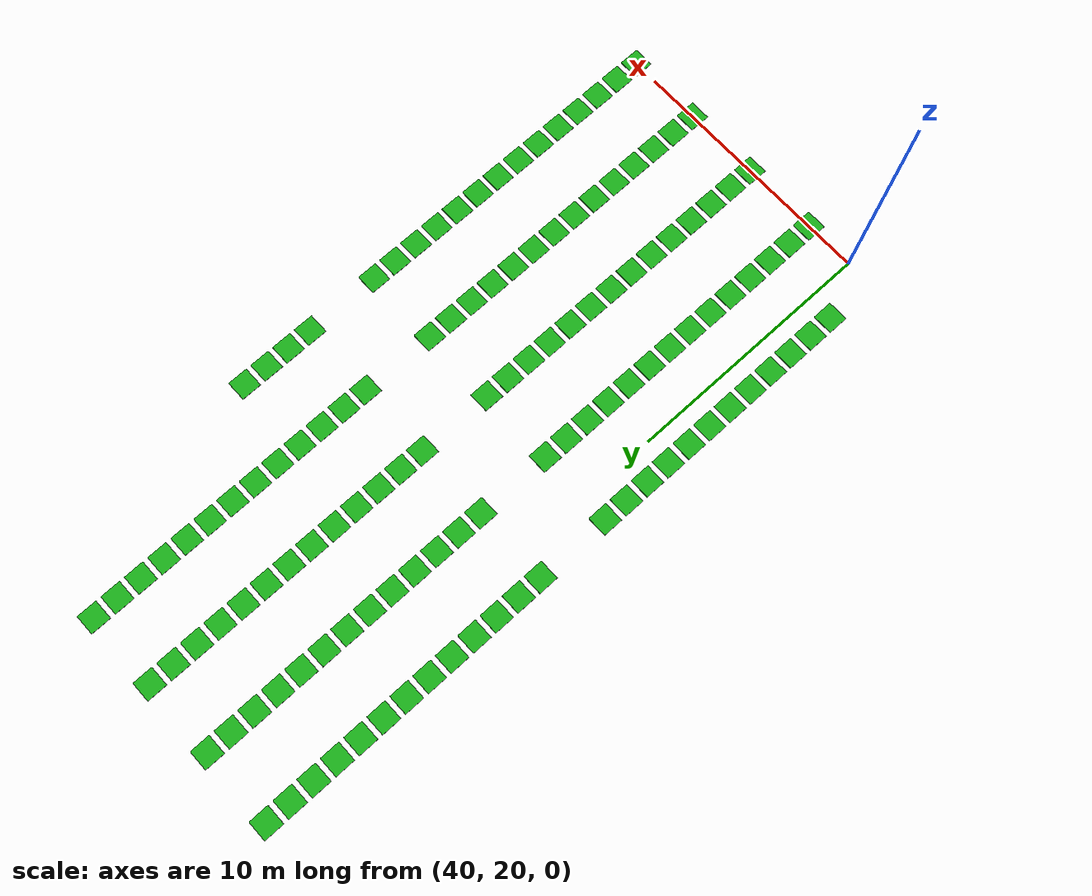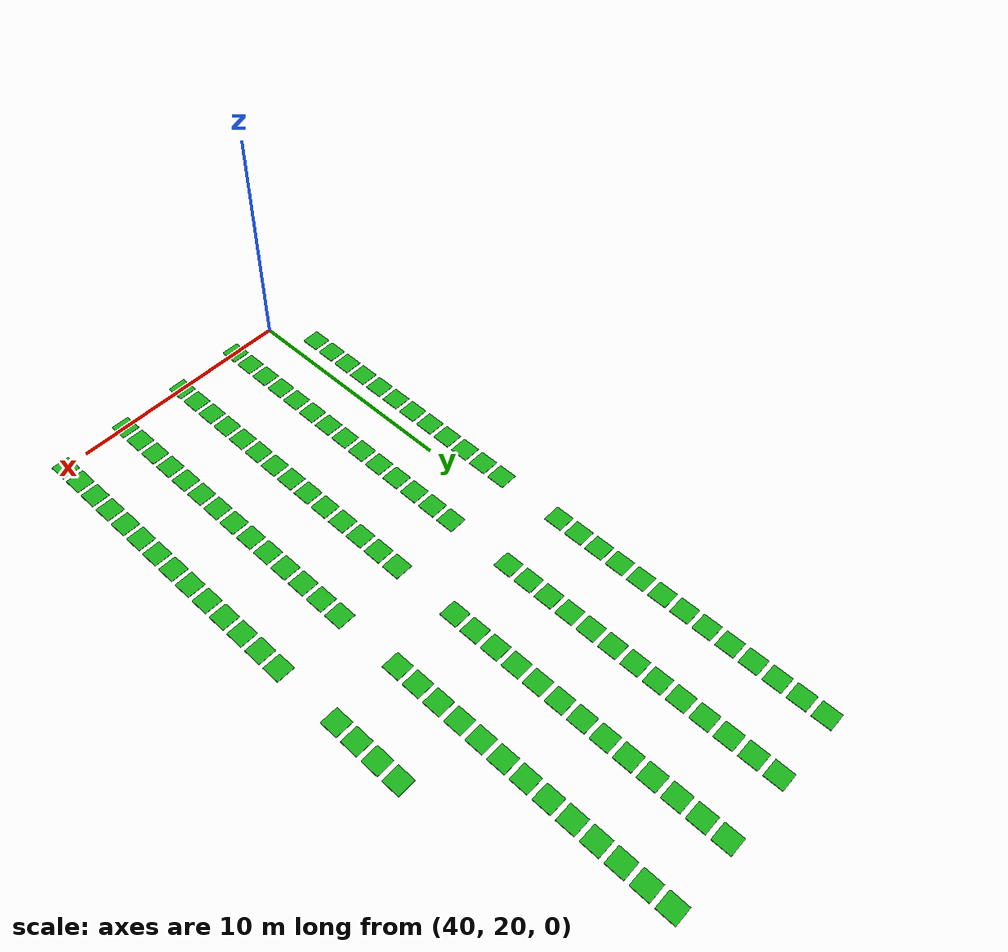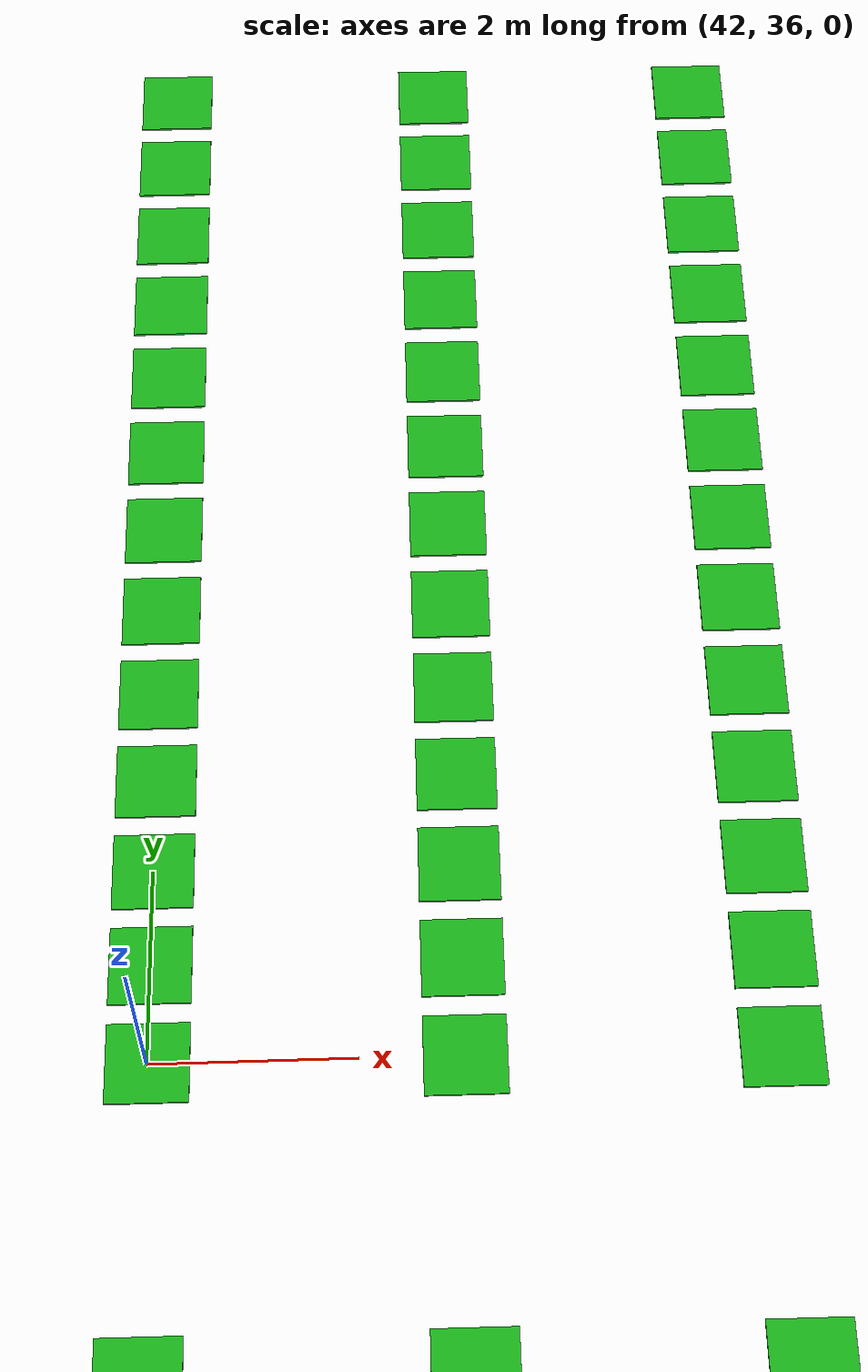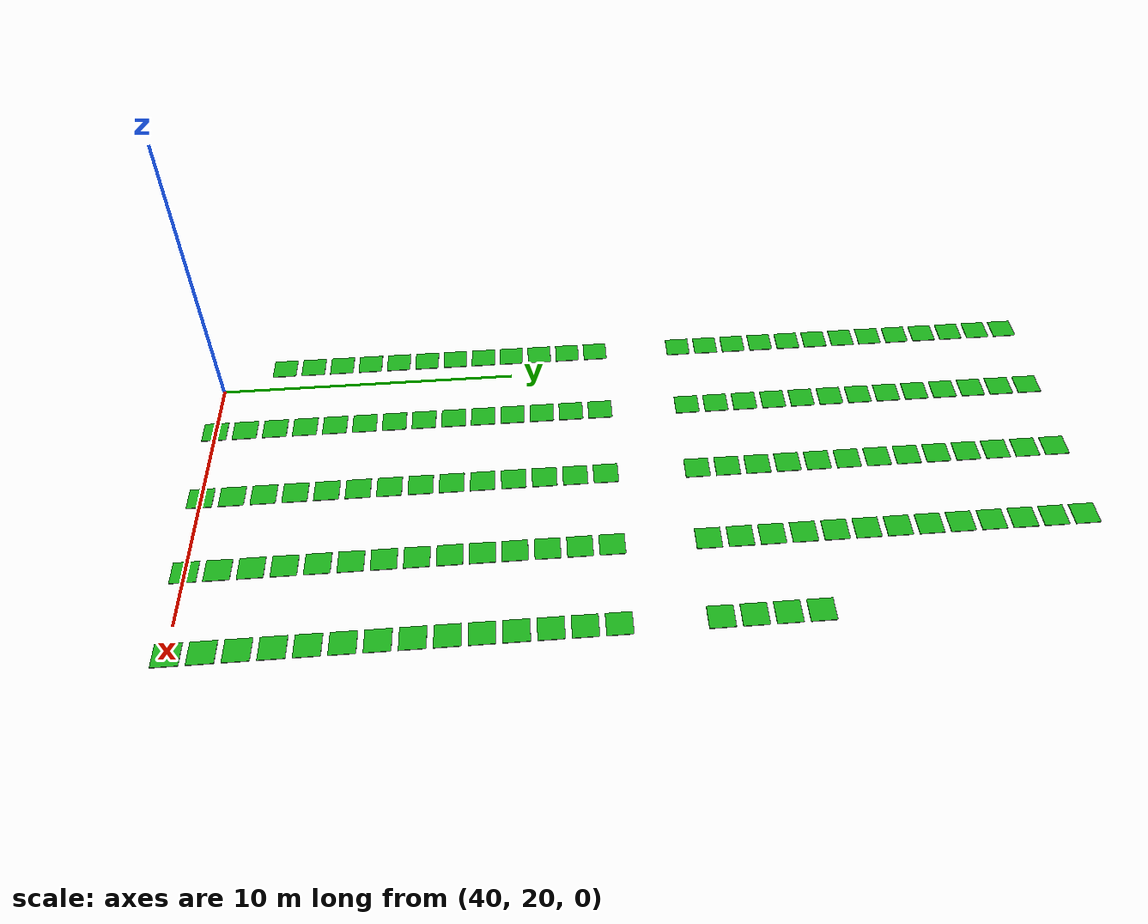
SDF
<sdf version="1.10">
 <world name="my_map">
  <model name="shelf_1188">
   <static>true</static>
   <pose>39.0
        48.0
        0.02
        0 0 0</pose>
   <link name="link">
    <visual name="visual">
     <geometry><box><size>0.8
                0.8
                0.02</size></box></geometry>
     <material><ambient>0.10 0.70 0.10 1</ambient><diffuse>0.10 0.70 0.10 1</diffuse></material>
    </visual>
   </link>
  </model>
  <model name="shelf_1189">
   <static>true</static>
   <pose>42.0
        48.0
        0.02
        0 0 0</pose>
   <link name="link">
    <visual name="visual">
     <geometry><box><size>0.8
                0.8
                0.02</size></box></geometry>
     <material><ambient>0.10 0.70 0.10 1</ambient><diffuse>0.10 0.70 0.10 1</diffuse></material>
    </visual>
   </link>
  </model>
  <model name="shelf_1190">
   <static>true</static>
   <pose>45.0
        48.0
        0.02
        0 0 0</pose>
   <link name="link">
    <visual name="visual">
     <geometry><box><size>0.8
                0.8
                0.02</size></box></geometry>
     <material><ambient>0.10 0.70 0.10 1</ambient><diffuse>0.10 0.70 0.10 1</diffuse></material>
    </visual>
   </link>
  </model>
  <model name="shelf_1191">
   <static>true</static>
   <pose>48.0
        48.0
        0.02
        0 0 0</pose>
   <link name="link">
    <visual name="visual">
     <geometry><box><size>0.8
                0.8
                0.02</size></box></geometry>
     <material><ambient>0.10 0.70 0.10 1</ambient><diffuse>0.10 0.70 0.10 1</diffuse></material>
    </visual>
   </link>
  </model>
  <model name="shelf_1213">
   <static>true</static>
   <pose>39.0
        47.0
        0.02
        0 0 0</pose>
   <link name="link">
    <visual name="visual">
     <geometry><box><size>0.8
                0.8
                0.02</size></box></geometry>
     <material><ambient>0.10 0.70 0.10 1</ambient><diffuse>0.10 0.70 0.10 1</diffuse></material>
    </visual>
   </link>
  </model>
  <model name="shelf_1214">
   <static>true</static>
   <pose>42.0
        47.0
        0.02
        0 0 0</pose>
   <link name="link">
    <visual name="visual">
     <geometry><box><size>0.8
                0.8
                0.02</size></box></geometry>
     <material><ambient>0.10 0.70 0.10 1</ambient><diffuse>0.10 0.70 0.10 1</diffuse></material>
    </visual>
   </link>
  </model>
  <model name="shelf_1215">
   <static>true</static>
   <pose>45.0
        47.0
        0.02
        0 0 0</pose>
   <link name="link">
    <visual name="visual">
     <geometry><box><size>0.8
                0.8
                0.02</size></box></geometry>
     <material><ambient>0.10 0.70 0.10 1</ambient><diffuse>0.10 0.70 0.10 1</diffuse></material>
    </visual>
   </link>
  </model>
  <model name="shelf_1216">
   <static>true</static>
   <pose>48.0
        47.0
        0.02
        0 0 0</pose>
   <link name="link">
    <visual name="visual">
     <geometry><box><size>0.8
                0.8
                0.02</size></box></geometry>
     <material><ambient>0.10 0.70 0.10 1</ambient><diffuse>0.10 0.70 0.10 1</diffuse></material>
    </visual>
   </link>
  </model>
  <model name="shelf_1238">
   <static>true</static>
   <pose>39.0
        46.0
        0.02
        0 0 0</pose>
   <link name="link">
    <visual name="visual">
     <geometry><box><size>0.8
                0.8
                0.02</size></box></geometry>
     <material><ambient>0.10 0.70 0.10 1</ambient><diffuse>0.10 0.70 0.10 1</diffuse></material>
    </visual>
   </link>
  </model>
  <model name="shelf_1239">
   <static>true</static>
   <pose>42.0
        46.0
        0.02
        0 0 0</pose>
   <link name="link">
    <visual name="visual">
     <geometry><box><size>0.8
                0.8
                0.02</size></box></geometry>
     <material><ambient>0.10 0.70 0.10 1</ambient><diffuse>0.10 0.70 0.10 1</diffuse></material>
    </visual>
   </link>
  </model>
  <model name="shelf_1240">
   <static>true</static>
   <pose>45.0
        46.0
        0.02
        0 0 0</pose>
   <link name="link">
    <visual name="visual">
     <geometry><box><size>0.8
                0.8
                0.02</size></box></geometry>
     <material><ambient>0.10 0.70 0.10 1</ambient><diffuse>0.10 0.70 0.10 1</diffuse></material>
    </visual>
   </link>
  </model>
  <model name="shelf_1241">
   <static>true</static>
   <pose>48.0
        46.0
        0.02
        0 0 0</pose>
   <link name="link">
    <visual name="visual">
     <geometry><box><size>0.8
                0.8
                0.02</size></box></geometry>
     <material><ambient>0.10 0.70 0.10 1</ambient><diffuse>0.10 0.70 0.10 1</diffuse></material>
    </visual>
   </link>
  </model>
  <model name="shelf_1263">
   <static>true</static>
   <pose>39.0
        45.0
        0.02
        0 0 0</pose>
   <link name="link">
    <visual name="visual">
     <geometry><box><size>0.8
                0.8
                0.02</size></box></geometry>
     <material><ambient>0.10 0.70 0.10 1</ambient><diffuse>0.10 0.70 0.10 1</diffuse></material>
    </visual>
   </link>
  </model>
  <model name="shelf_1264">
   <static>true</static>
   <pose>42.0
        45.0
        0.02
        0 0 0</pose>
   <link name="link">
    <visual name="visual">
     <geometry><box><size>0.8
                0.8
                0.02</size></box></geometry>
     <material><ambient>0.10 0.70 0.10 1</ambient><diffuse>0.10 0.70 0.10 1</diffuse></material>
    </visual>
   </link>
  </model>
  <model name="shelf_1265">
   <static>true</static>
   <pose>45.0
        45.0
        0.02
        0 0 0</pose>
   <link name="link">
    <visual name="visual">
     <geometry><box><size>0.8
                0.8
                0.02</size></box></geometry>
     <material><ambient>0.10 0.70 0.10 1</ambient><diffuse>0.10 0.70 0.10 1</diffuse></material>
    </visual>
   </link>
  </model>
  <model name="shelf_1266">
   <static>true</static>
   <pose>48.0
        45.0
        0.02
        0 0 0</pose>
   <link name="link">
    <visual name="visual">
     <geometry><box><size>0.8
                0.8
                0.02</size></box></geometry>
     <material><ambient>0.10 0.70 0.10 1</ambient><diffuse>0.10 0.70 0.10 1</diffuse></material>
    </visual>
   </link>
  </model>
  <model name="shelf_1288">
   <static>true</static>
   <pose>39.0
        44.0
        0.02
        0 0 0</pose>
   <link name="link">
    <visual name="visual">
     <geometry><box><size>0.8
                0.8
                0.02</size></box></geometry>
     <material><ambient>0.10 0.70 0.10 1</ambient><diffuse>0.10 0.70 0.10 1</diffuse></material>
    </visual>
   </link>
  </model>
  <model name="shelf_1289">
   <static>true</static>
   <pose>42.0
        44.0
        0.02
        0 0 0</pose>
   <link name="link">
    <visual name="visual">
     <geometry><box><size>0.8
                0.8
                0.02</size></box></geometry>
     <material><ambient>0.10 0.70 0.10 1</ambient><diffuse>0.10 0.70 0.10 1</diffuse></material>
    </visual>
   </link>
  </model>
  <model name="shelf_1290">
   <static>true</static>
   <pose>45.0
        44.0
        0.02
        0 0 0</pose>
   <link name="link">
    <visual name="visual">
     <geometry><box><size>0.8
                0.8
                0.02</size></box></geometry>
     <material><ambient>0.10 0.70 0.10 1</ambient><diffuse>0.10 0.70 0.10 1</diffuse></material>
    </visual>
   </link>
  </model>
  <model name="shelf_1291">
   <static>true</static>
   <pose>48.0
        44.0
        0.02
        0 0 0</pose>
   <link name="link">
    <visual name="visual">
     <geometry><box><size>0.8
                0.8
                0.02</size></box></geometry>
     <material><ambient>0.10 0.70 0.10 1</ambient><diffuse>0.10 0.70 0.10 1</diffuse></material>
    </visual>
   </link>
  </model>
  <model name="shelf_1313">
   <static>true</static>
   <pose>39.0
        43.0
        0.02
        0 0 0</pose>
   <link name="link">
    <visual name="visual">
     <geometry><box><size>0.8
                0.8
                0.02</size></box></geometry>
     <material><ambient>0.10 0.70 0.10 1</ambient><diffuse>0.10 0.70 0.10 1</diffuse></material>
    </visual>
   </link>
  </model>
  <model name="shelf_1314">
   <static>true</static>
   <pose>42.0
        43.0
        0.02
        0 0 0</pose>
   <link name="link">
    <visual name="visual">
     <geometry><box><size>0.8
                0.8
                0.02</size></box></geometry>
     <material><ambient>0.10 0.70 0.10 1</ambient><diffuse>0.10 0.70 0.10 1</diffuse></material>
    </visual>
   </link>
  </model>
  <model name="shelf_1315">
   <static>true</static>
   <pose>45.0
        43.0
        0.02
        0 0 0</pose>
   <link name="link">
    <visual name="visual">
     <geometry><box><size>0.8
                0.8
                0.02</size></box></geometry>
     <material><ambient>0.10 0.70 0.10 1</ambient><diffuse>0.10 0.70 0.10 1</diffuse></material>
    </visual>
   </link>
  </model>
  <model name="shelf_1316">
   <static>true</static>
   <pose>48.0
        43.0
        0.02
        0 0 0</pose>
   <link name="link">
    <visual name="visual">
     <geometry><box><size>0.8
                0.8
                0.02</size></box></geometry>
     <material><ambient>0.10 0.70 0.10 1</ambient><diffuse>0.10 0.70 0.10 1</diffuse></material>
    </visual>
   </link>
  </model>
  <model name="shelf_1338">
   <static>true</static>
   <pose>39.0
        42.0
        0.02
        0 0 0</pose>
   <link name="link">
    <visual name="visual">
     <geometry><box><size>0.8
                0.8
                0.02</size></box></geometry>
     <material><ambient>0.10 0.70 0.10 1</ambient><diffuse>0.10 0.70 0.10 1</diffuse></material>
    </visual>
   </link>
  </model>
  <model name="shelf_1339">
   <static>true</static>
   <pose>42.0
        42.0
        0.02
        0 0 0</pose>
   <link name="link">
    <visual name="visual">
     <geometry><box><size>0.8
                0.8
                0.02</size></box></geometry>
     <material><ambient>0.10 0.70 0.10 1</ambient><diffuse>0.10 0.70 0.10 1</diffuse></material>
    </visual>
   </link>
  </model>
  <model name="shelf_1340">
   <static>true</static>
   <pose>45.0
        42.0
        0.02
        0 0 0</pose>
   <link name="link">
    <visual name="visual">
     <geometry><box><size>0.8
                0.8
                0.02</size></box></geometry>
     <material><ambient>0.10 0.70 0.10 1</ambient><diffuse>0.10 0.70 0.10 1</diffuse></material>
    </visual>
   </link>
  </model>
  <model name="shelf_1341">
   <static>true</static>
   <pose>48.0
        42.0
        0.02
        0 0 0</pose>
   <link name="link">
    <visual name="visual">
     <geometry><box><size>0.8
                0.8
                0.02</size></box></geometry>
     <material><ambient>0.10 0.70 0.10 1</ambient><diffuse>0.10 0.70 0.10 1</diffuse></material>
    </visual>
   </link>
  </model>
  <model name="shelf_1363">
   <static>true</static>
   <pose>39.0
        41.0
        0.02
        0 0 0</pose>
   <link name="link">
    <visual name="visual">
     <geometry><box><size>0.8
                0.8
                0.02</size></box></geometry>
     <material><ambient>0.10 0.70 0.10 1</ambient><diffuse>0.10 0.70 0.10 1</diffuse></material>
    </visual>
   </link>
  </model>
  <model name="shelf_1364">
   <static>true</static>
   <pose>42.0
        41.0
        0.02
        0 0 0</pose>
   <link name="link">
    <visual name="visual">
     <geometry><box><size>0.8
                0.8
                0.02</size></box></geometry>
     <material><ambient>0.10 0.70 0.10 1</ambient><diffuse>0.10 0.70 0.10 1</diffuse></material>
    </visual>
   </link>
  </model>
  <model name="shelf_1365">
   <static>true</static>
   <pose>45.0
        41.0
        0.02
        0 0 0</pose>
   <link name="link">
    <visual name="visual">
     <geometry><box><size>0.8
                0.8
                0.02</size></box></geometry>
     <material><ambient>0.10 0.70 0.10 1</ambient><diffuse>0.10 0.70 0.10 1</diffuse></material>
    </visual>
   </link>
  </model>
  <model name="shelf_1366">
   <static>true</static>
   <pose>48.0
        41.0
        0.02
        0 0 0</pose>
   <link name="link">
    <visual name="visual">
     <geometry><box><size>0.8
                0.8
                0.02</size></box></geometry>
     <material><ambient>0.10 0.70 0.10 1</ambient><diffuse>0.10 0.70 0.10 1</diffuse></material>
    </visual>
   </link>
  </model>
  <model name="shelf_1388">
   <static>true</static>
   <pose>39.0
        40.0
        0.02
        0 0 0</pose>
   <link name="link">
    <visual name="visual">
     <geometry><box><size>0.8
                0.8
                0.02</size></box></geometry>
     <material><ambient>0.10 0.70 0.10 1</ambient><diffuse>0.10 0.70 0.10 1</diffuse></material>
    </visual>
   </link>
  </model>
  <model name="shelf_1389">
   <static>true</static>
   <pose>42.0
        40.0
        0.02
        0 0 0</pose>
   <link name="link">
    <visual name="visual">
     <geometry><box><size>0.8
                0.8
                0.02</size></box></geometry>
     <material><ambient>0.10 0.70 0.10 1</ambient><diffuse>0.10 0.70 0.10 1</diffuse></material>
    </visual>
   </link>
  </model>
  <model name="shelf_1390">
   <static>true</static>
   <pose>45.0
        40.0
        0.02
        0 0 0</pose>
   <link name="link">
    <visual name="visual">
     <geometry><box><size>0.8
                0.8
                0.02</size></box></geometry>
     <material><ambient>0.10 0.70 0.10 1</ambient><diffuse>0.10 0.70 0.10 1</diffuse></material>
    </visual>
   </link>
  </model>
  <model name="shelf_1391">
   <static>true</static>
   <pose>48.0
        40.0
        0.02
        0 0 0</pose>
   <link name="link">
    <visual name="visual">
     <geometry><box><size>0.8
                0.8
                0.02</size></box></geometry>
     <material><ambient>0.10 0.70 0.10 1</ambient><diffuse>0.10 0.70 0.10 1</diffuse></material>
    </visual>
   </link>
  </model>
  <model name="shelf_1413">
   <static>true</static>
   <pose>39.0
        39.0
        0.02
        0 0 0</pose>
   <link name="link">
    <visual name="visual">
     <geometry><box><size>0.8
                0.8
                0.02</size></box></geometry>
     <material><ambient>0.10 0.70 0.10 1</ambient><diffuse>0.10 0.70 0.10 1</diffuse></material>
    </visual>
   </link>
  </model>
  <model name="shelf_1414">
   <static>true</static>
   <pose>42.0
        39.0
        0.02
        0 0 0</pose>
   <link name="link">
    <visual name="visual">
     <geometry><box><size>0.8
                0.8
                0.02</size></box></geometry>
     <material><ambient>0.10 0.70 0.10 1</ambient><diffuse>0.10 0.70 0.10 1</diffuse></material>
    </visual>
   </link>
  </model>
  <model name="shelf_1415">
   <static>true</static>
   <pose>45.0
        39.0
        0.02
        0 0 0</pose>
   <link name="link">
    <visual name="visual">
     <geometry><box><size>0.8
                0.8
                0.02</size></box></geometry>
     <material><ambient>0.10 0.70 0.10 1</ambient><diffuse>0.10 0.70 0.10 1</diffuse></material>
    </visual>
   </link>
  </model>
  <model name="shelf_1416">
   <static>true</static>
   <pose>48.0
        39.0
        0.02
        0 0 0</pose>
   <link name="link">
    <visual name="visual">
     <geometry><box><size>0.8
                0.8
                0.02</size></box></geometry>
     <material><ambient>0.10 0.70 0.10 1</ambient><diffuse>0.10 0.70 0.10 1</diffuse></material>
    </visual>
   </link>
  </model>
  <model name="shelf_1417">
   <static>true</static>
   <pose>51.0
        39.0
        0.02
        0 0 0</pose>
   <link name="link">
    <visual name="visual">
     <geometry><box><size>0.8
                0.8
                0.02</size></box></geometry>
     <material><ambient>0.10 0.70 0.10 1</ambient><diffuse>0.10 0.70 0.10 1</diffuse></material>
    </visual>
   </link>
  </model>
  <model name="shelf_1438">
   <static>true</static>
   <pose>39.0
        38.0
        0.02
        0 0 0</pose>
   <link name="link">
    <visual name="visual">
     <geometry><box><size>0.8
                0.8
                0.02</size></box></geometry>
     <material><ambient>0.10 0.70 0.10 1</ambient><diffuse>0.10 0.70 0.10 1</diffuse></material>
    </visual>
   </link>
  </model>
  <model name="shelf_1439">
   <static>true</static>
   <pose>42.0
        38.0
        0.02
        0 0 0</pose>
   <link name="link">
    <visual name="visual">
     <geometry><box><size>0.8
                0.8
                0.02</size></box></geometry>
     <material><ambient>0.10 0.70 0.10 1</ambient><diffuse>0.10 0.70 0.10 1</diffuse></material>
    </visual>
   </link>
  </model>
  <model name="shelf_1440">
   <static>true</static>
   <pose>45.0
        38.0
        0.02
        0 0 0</pose>
   <link name="link">
    <visual name="visual">
     <geometry><box><size>0.8
                0.8
                0.02</size></box></geometry>
     <material><ambient>0.10 0.70 0.10 1</ambient><diffuse>0.10 0.70 0.10 1</diffuse></material>
    </visual>
   </link>
  </model>
  <model name="shelf_1441">
   <static>true</static>
   <pose>48.0
        38.0
        0.02
        0 0 0</pose>
   <link name="link">
    <visual name="visual">
     <geometry><box><size>0.8
                0.8
                0.02</size></box></geometry>
     <material><ambient>0.10 0.70 0.10 1</ambient><diffuse>0.10 0.70 0.10 1</diffuse></material>
    </visual>
   </link>
  </model>
  <model name="shelf_1442">
   <static>true</static>
   <pose>51.0
        38.0
        0.02
        0 0 0</pose>
   <link name="link">
    <visual name="visual">
     <geometry><box><size>0.8
                0.8
                0.02</size></box></geometry>
     <material><ambient>0.10 0.70 0.10 1</ambient><diffuse>0.10 0.70 0.10 1</diffuse></material>
    </visual>
   </link>
  </model>
  <model name="shelf_1463">
   <static>true</static>
   <pose>39.0
        37.0
        0.02
        0 0 0</pose>
   <link name="link">
    <visual name="visual">
     <geometry><box><size>0.8
                0.8
                0.02</size></box></geometry>
     <material><ambient>0.10 0.70 0.10 1</ambient><diffuse>0.10 0.70 0.10 1</diffuse></material>
    </visual>
   </link>
  </model>
  <model name="shelf_1464">
   <static>true</static>
   <pose>42.0
        37.0
        0.02
        0 0 0</pose>
   <link name="link">
    <visual name="visual">
     <geometry><box><size>0.8
                0.8
                0.02</size></box></geometry>
     <material><ambient>0.10 0.70 0.10 1</ambient><diffuse>0.10 0.70 0.10 1</diffuse></material>
    </visual>
   </link>
  </model>
  <model name="shelf_1465">
   <static>true</static>
   <pose>45.0
        37.0
        0.02
        0 0 0</pose>
   <link name="link">
    <visual name="visual">
     <geometry><box><size>0.8
                0.8
                0.02</size></box></geometry>
     <material><ambient>0.10 0.70 0.10 1</ambient><diffuse>0.10 0.70 0.10 1</diffuse></material>
    </visual>
   </link>
  </model>
  <model name="shelf_1466">
   <static>true</static>
   <pose>48.0
        37.0
        0.02
        0 0 0</pose>
   <link name="link">
    <visual name="visual">
     <geometry><box><size>0.8
                0.8
                0.02</size></box></geometry>
     <material><ambient>0.10 0.70 0.10 1</ambient><diffuse>0.10 0.70 0.10 1</diffuse></material>
    </visual>
   </link>
  </model>
  <model name="shelf_1467">
   <static>true</static>
   <pose>51.0
        37.0
        0.02
        0 0 0</pose>
   <link name="link">
    <visual name="visual">
     <geometry><box><size>0.8
                0.8
                0.02</size></box></geometry>
     <material><ambient>0.10 0.70 0.10 1</ambient><diffuse>0.10 0.70 0.10 1</diffuse></material>
    </visual>
   </link>
  </model>
  <model name="shelf_1488">
   <static>true</static>
   <pose>39.0
        36.0
        0.02
        0 0 0</pose>
   <link name="link">
    <visual name="visual">
     <geometry><box><size>0.8
                0.8
                0.02</size></box></geometry>
     <material><ambient>0.10 0.70 0.10 1</ambient><diffuse>0.10 0.70 0.10 1</diffuse></material>
    </visual>
   </link>
  </model>
  <model name="shelf_1489">
   <static>true</static>
   <pose>42.0
        36.0
        0.02
        0 0 0</pose>
   <link name="link">
    <visual name="visual">
     <geometry><box><size>0.8
                0.8
                0.02</size></box></geometry>
     <material><ambient>0.10 0.70 0.10 1</ambient><diffuse>0.10 0.70 0.10 1</diffuse></material>
    </visual>
   </link>
  </model>
  <model name="shelf_1490">
   <static>true</static>
   <pose>45.0
        36.0
        0.02
        0 0 0</pose>
   <link name="link">
    <visual name="visual">
     <geometry><box><size>0.8
                0.8
                0.02</size></box></geometry>
     <material><ambient>0.10 0.70 0.10 1</ambient><diffuse>0.10 0.70 0.10 1</diffuse></material>
    </visual>
   </link>
  </model>
  <model name="shelf_1491">
   <static>true</static>
   <pose>48.0
        36.0
        0.02
        0 0 0</pose>
   <link name="link">
    <visual name="visual">
     <geometry><box><size>0.8
                0.8
                0.02</size></box></geometry>
     <material><ambient>0.10 0.70 0.10 1</ambient><diffuse>0.10 0.70 0.10 1</diffuse></material>
    </visual>
   </link>
  </model>
  <model name="shelf_1492">
   <static>true</static>
   <pose>51.0
        36.0
        0.02
        0 0 0</pose>
   <link name="link">
    <visual name="visual">
     <geometry><box><size>0.8
                0.8
                0.02</size></box></geometry>
     <material><ambient>0.10 0.70 0.10 1</ambient><diffuse>0.10 0.70 0.10 1</diffuse></material>
    </visual>
   </link>
  </model>
  <model name="shelf_1513">
   <static>true</static>
   <pose>39.0
        33.0
        0.02
        0 0 0</pose>
   <link name="link">
    <visual name="visual">
     <geometry><box><size>0.8
                0.8
                0.02</size></box></geometry>
     <material><ambient>0.10 0.70 0.10 1</ambient><diffuse>0.10 0.70 0.10 1</diffuse></material>
    </visual>
   </link>
  </model>
  <model name="shelf_1514">
   <static>true</static>
   <pose>42.0
        33.0
        0.02
        0 0 0</pose>
   <link name="link">
    <visual name="visual">
     <geometry><box><size>0.8
                0.8
                0.02</size></box></geometry>
     <material><ambient>0.10 0.70 0.10 1</ambient><diffuse>0.10 0.70 0.10 1</diffuse></material>
    </visual>
   </link>
  </model>
  <model name="shelf_1515">
   <static>true</static>
   <pose>45.0
        33.0
        0.02
        0 0 0</pose>
   <link name="link">
    <visual name="visual">
     <geometry><box><size>0.8
                0.8
                0.02</size></box></geometry>
     <material><ambient>0.10 0.70 0.10 1</ambient><diffuse>0.10 0.70 0.10 1</diffuse></material>
    </visual>
   </link>
  </model>
  <model name="shelf_1516">
   <static>true</static>
   <pose>48.0
        33.0
        0.02
        0 0 0</pose>
   <link name="link">
    <visual name="visual">
     <geometry><box><size>0.8
                0.8
                0.02</size></box></geometry>
     <material><ambient>0.10 0.70 0.10 1</ambient><diffuse>0.10 0.70 0.10 1</diffuse></material>
    </visual>
   </link>
  </model>
  <model name="shelf_1517">
   <static>true</static>
   <pose>51.0
        33.0
        0.02
        0 0 0</pose>
   <link name="link">
    <visual name="visual">
     <geometry><box><size>0.8
                0.8
                0.02</size></box></geometry>
     <material><ambient>0.10 0.70 0.10 1</ambient><diffuse>0.10 0.70 0.10 1</diffuse></material>
    </visual>
   </link>
  </model>
  <model name="shelf_1538">
   <static>true</static>
   <pose>39.0
        32.0
        0.02
        0 0 0</pose>
   <link name="link">
    <visual name="visual">
     <geometry><box><size>0.8
                0.8
                0.02</size></box></geometry>
     <material><ambient>0.10 0.70 0.10 1</ambient><diffuse>0.10 0.70 0.10 1</diffuse></material>
    </visual>
   </link>
  </model>
  <model name="shelf_1539">
   <static>true</static>
   <pose>42.0
        32.0
        0.02
        0 0 0</pose>
   <link name="link">
    <visual name="visual">
     <geometry><box><size>0.8
                0.8
                0.02</size></box></geometry>
     <material><ambient>0.10 0.70 0.10 1</ambient><diffuse>0.10 0.70 0.10 1</diffuse></material>
    </visual>
   </link>
  </model>
  <model name="shelf_1540">
   <static>true</static>
   <pose>45.0
        32.0
        0.02
        0 0 0</pose>
   <link name="link">
    <visual name="visual">
     <geometry><box><size>0.8
                0.8
                0.02</size></box></geometry>
     <material><ambient>0.10 0.70 0.10 1</ambient><diffuse>0.10 0.70 0.10 1</diffuse></material>
    </visual>
   </link>
  </model>
  <model name="shelf_1541">
   <static>true</static>
   <pose>48.0
        32.0
        0.02
        0 0 0</pose>
   <link name="link">
    <visual name="visual">
     <geometry><box><size>0.8
                0.8
                0.02</size></box></geometry>
     <material><ambient>0.10 0.70 0.10 1</ambient><diffuse>0.10 0.70 0.10 1</diffuse></material>
    </visual>
   </link>
  </model>
  <model name="shelf_1542">
   <static>true</static>
   <pose>51.0
        32.0
        0.02
        0 0 0</pose>
   <link name="link">
    <visual name="visual">
     <geometry><box><size>0.8
                0.8
                0.02</size></box></geometry>
     <material><ambient>0.10 0.70 0.10 1</ambient><diffuse>0.10 0.70 0.10 1</diffuse></material>
    </visual>
   </link>
  </model>
  <model name="shelf_1563">
   <static>true</static>
   <pose>39.0
        31.0
        0.02
        0 0 0</pose>
   <link name="link">
    <visual name="visual">
     <geometry><box><size>0.8
                0.8
                0.02</size></box></geometry>
     <material><ambient>0.10 0.70 0.10 1</ambient><diffuse>0.10 0.70 0.10 1</diffuse></material>
    </visual>
   </link>
  </model>
  <model name="shelf_1564">
   <static>true</static>
   <pose>42.0
        31.0
        0.02
        0 0 0</pose>
   <link name="link">
    <visual name="visual">
     <geometry><box><size>0.8
                0.8
                0.02</size></box></geometry>
     <material><ambient>0.10 0.70 0.10 1</ambient><diffuse>0.10 0.70 0.10 1</diffuse></material>
    </visual>
   </link>
  </model>
  <model name="shelf_1565">
   <static>true</static>
   <pose>45.0
        31.0
        0.02
        0 0 0</pose>
   <link name="link">
    <visual name="visual">
     <geometry><box><size>0.8
                0.8
                0.02</size></box></geometry>
     <material><ambient>0.10 0.70 0.10 1</ambient><diffuse>0.10 0.70 0.10 1</diffuse></material>
    </visual>
   </link>
  </model>
  <model name="shelf_1566">
   <static>true</static>
   <pose>48.0
        31.0
        0.02
        0 0 0</pose>
   <link name="link">
    <visual name="visual">
     <geometry><box><size>0.8
                0.8
                0.02</size></box></geometry>
     <material><ambient>0.10 0.70 0.10 1</ambient><diffuse>0.10 0.70 0.10 1</diffuse></material>
    </visual>
   </link>
  </model>
  <model name="shelf_1567">
   <static>true</static>
   <pose>51.0
        31.0
        0.02
        0 0 0</pose>
   <link name="link">
    <visual name="visual">
     <geometry><box><size>0.8
                0.8
                0.02</size></box></geometry>
     <material><ambient>0.10 0.70 0.10 1</ambient><diffuse>0.10 0.70 0.10 1</diffuse></material>
    </visual>
   </link>
  </model>
  <model name="shelf_1588">
   <static>true</static>
   <pose>39.0
        30.0
        0.02
        0 0 0</pose>
   <link name="link">
    <visual name="visual">
     <geometry><box><size>0.8
                0.8
                0.02</size></box></geometry>
     <material><ambient>0.10 0.70 0.10 1</ambient><diffuse>0.10 0.70 0.10 1</diffuse></material>
    </visual>
   </link>
  </model>
  <model name="shelf_1589">
   <static>true</static>
   <pose>42.0
        30.0
        0.02
        0 0 0</pose>
   <link name="link">
    <visual name="visual">
     <geometry><box><size>0.8
                0.8
                0.02</size></box></geometry>
     <material><ambient>0.10 0.70 0.10 1</ambient><diffuse>0.10 0.70 0.10 1</diffuse></material>
    </visual>
   </link>
  </model>
  <model name="shelf_1590">
   <static>true</static>
   <pose>45.0
        30.0
        0.02
        0 0 0</pose>
   <link name="link">
    <visual name="visual">
     <geometry><box><size>0.8
                0.8
                0.02</size></box></geometry>
     <material><ambient>0.10 0.70 0.10 1</ambient><diffuse>0.10 0.70 0.10 1</diffuse></material>
    </visual>
   </link>
  </model>
  <model name="shelf_1591">
   <static>true</static>
   <pose>48.0
        30.0
        0.02
        0 0 0</pose>
   <link name="link">
    <visual name="visual">
     <geometry><box><size>0.8
                0.8
                0.02</size></box></geometry>
     <material><ambient>0.10 0.70 0.10 1</ambient><diffuse>0.10 0.70 0.10 1</diffuse></material>
    </visual>
   </link>
  </model>
  <model name="shelf_1592">
   <static>true</static>
   <pose>51.0
        30.0
        0.02
        0 0 0</pose>
   <link name="link">
    <visual name="visual">
     <geometry><box><size>0.8
                0.8
                0.02</size></box></geometry>
     <material><ambient>0.10 0.70 0.10 1</ambient><diffuse>0.10 0.70 0.10 1</diffuse></material>
    </visual>
   </link>
  </model>
  <model name="shelf_1613">
   <static>true</static>
   <pose>39.0
        29.0
        0.02
        0 0 0</pose>
   <link name="link">
    <visual name="visual">
     <geometry><box><size>0.8
                0.8
                0.02</size></box></geometry>
     <material><ambient>0.10 0.70 0.10 1</ambient><diffuse>0.10 0.70 0.10 1</diffuse></material>
    </visual>
   </link>
  </model>
  <model name="shelf_1614">
   <static>true</static>
   <pose>42.0
        29.0
        0.02
        0 0 0</pose>
   <link name="link">
    <visual name="visual">
     <geometry><box><size>0.8
                0.8
                0.02</size></box></geometry>
     <material><ambient>0.10 0.70 0.10 1</ambient><diffuse>0.10 0.70 0.10 1</diffuse></material>
    </visual>
   </link>
  </model>
  <model name="shelf_1615">
   <static>true</static>
   <pose>45.0
        29.0
        0.02
        0 0 0</pose>
   <link name="link">
    <visual name="visual">
     <geometry><box><size>0.8
                0.8
                0.02</size></box></geometry>
     <material><ambient>0.10 0.70 0.10 1</ambient><diffuse>0.10 0.70 0.10 1</diffuse></material>
    </visual>
   </link>
  </model>
  <model name="shelf_1616">
   <static>true</static>
   <pose>48.0
        29.0
        0.02
        0 0 0</pose>
   <link name="link">
    <visual name="visual">
     <geometry><box><size>0.8
                0.8
                0.02</size></box></geometry>
     <material><ambient>0.10 0.70 0.10 1</ambient><diffuse>0.10 0.70 0.10 1</diffuse></material>
    </visual>
   </link>
  </model>
  <model name="shelf_1617">
   <static>true</static>
   <pose>51.0
        29.0
        0.02
        0 0 0</pose>
   <link name="link">
    <visual name="visual">
     <geometry><box><size>0.8
                0.8
                0.02</size></box></geometry>
     <material><ambient>0.10 0.70 0.10 1</ambient><diffuse>0.10 0.70 0.10 1</diffuse></material>
    </visual>
   </link>
  </model>
  <model name="shelf_1638">
   <static>true</static>
   <pose>39.0
        28.0
        0.02
        0 0 0</pose>
   <link name="link">
    <visual name="visual">
     <geometry><box><size>0.8
                0.8
                0.02</size></box></geometry>
     <material><ambient>0.10 0.70 0.10 1</ambient><diffuse>0.10 0.70 0.10 1</diffuse></material>
    </visual>
   </link>
  </model>
  <model name="shelf_1639">
   <static>true</static>
   <pose>42.0
        28.0
        0.02
        0 0 0</pose>
   <link name="link">
    <visual name="visual">
     <geometry><box><size>0.8
                0.8
                0.02</size></box></geometry>
     <material><ambient>0.10 0.70 0.10 1</ambient><diffuse>0.10 0.70 0.10 1</diffuse></material>
    </visual>
   </link>
  </model>
  <model name="shelf_1640">
   <static>true</static>
   <pose>45.0
        28.0
        0.02
        0 0 0</pose>
   <link name="link">
    <visual name="visual">
     <geometry><box><size>0.8
                0.8
                0.02</size></box></geometry>
     <material><ambient>0.10 0.70 0.10 1</ambient><diffuse>0.10 0.70 0.10 1</diffuse></material>
    </visual>
   </link>
  </model>
  <model name="shelf_1641">
   <static>true</static>
   <pose>48.0
        28.0
        0.02
        0 0 0</pose>
   <link name="link">
    <visual name="visual">
     <geometry><box><size>0.8
                0.8
                0.02</size></box></geometry>
     <material><ambient>0.10 0.70 0.10 1</ambient><diffuse>0.10 0.70 0.10 1</diffuse></material>
    </visual>
   </link>
  </model>
  <model name="shelf_1642">
   <static>true</static>
   <pose>51.0
        28.0
        0.02
        0 0 0</pose>
   <link name="link">
    <visual name="visual">
     <geometry><box><size>0.8
                0.8
                0.02</size></box></geometry>
     <material><ambient>0.10 0.70 0.10 1</ambient><diffuse>0.10 0.70 0.10 1</diffuse></material>
    </visual>
   </link>
  </model>
  <model name="shelf_1663">
   <static>true</static>
   <pose>39.0
        27.0
        0.02
        0 0 0</pose>
   <link name="link">
    <visual name="visual">
     <geometry><box><size>0.8
                0.8
                0.02</size></box></geometry>
     <material><ambient>0.10 0.70 0.10 1</ambient><diffuse>0.10 0.70 0.10 1</diffuse></material>
    </visual>
   </link>
  </model>
  <model name="shelf_1664">
   <static>true</static>
   <pose>42.0
        27.0
        0.02
        0 0 0</pose>
   <link name="link">
    <visual name="visual">
     <geometry><box><size>0.8
                0.8
                0.02</size></box></geometry>
     <material><ambient>0.10 0.70 0.10 1</ambient><diffuse>0.10 0.70 0.10 1</diffuse></material>
    </visual>
   </link>
  </model>
  <model name="shelf_1665">
   <static>true</static>
   <pose>45.0
        27.0
        0.02
        0 0 0</pose>
   <link name="link">
    <visual name="visual">
     <geometry><box><size>0.8
                0.8
                0.02</size></box></geometry>
     <material><ambient>0.10 0.70 0.10 1</ambient><diffuse>0.10 0.70 0.10 1</diffuse></material>
    </visual>
   </link>
  </model>
  <model name="shelf_1666">
   <static>true</static>
   <pose>48.0
        27.0
        0.02
        0 0 0</pose>
   <link name="link">
    <visual name="visual">
     <geometry><box><size>0.8
                0.8
                0.02</size></box></geometry>
     <material><ambient>0.10 0.70 0.10 1</ambient><diffuse>0.10 0.70 0.10 1</diffuse></material>
    </visual>
   </link>
  </model>
  <model name="shelf_1667">
   <static>true</static>
   <pose>51.0
        27.0
        0.02
        0 0 0</pose>
   <link name="link">
    <visual name="visual">
     <geometry><box><size>0.8
                0.8
                0.02</size></box></geometry>
     <material><ambient>0.10 0.70 0.10 1</ambient><diffuse>0.10 0.70 0.10 1</diffuse></material>
    </visual>
   </link>
  </model>
  <model name="shelf_1688">
   <static>true</static>
   <pose>39.0
        26.0
        0.02
        0 0 0</pose>
   <link name="link">
    <visual name="visual">
     <geometry><box><size>0.8
                0.8
                0.02</size></box></geometry>
     <material><ambient>0.10 0.70 0.10 1</ambient><diffuse>0.10 0.70 0.10 1</diffuse></material>
    </visual>
   </link>
  </model>
  <model name="shelf_1689">
   <static>true</static>
   <pose>42.0
        26.0
        0.02
        0 0 0</pose>
   <link name="link">
    <visual name="visual">
     <geometry><box><size>0.8
                0.8
                0.02</size></box></geometry>
     <material><ambient>0.10 0.70 0.10 1</ambient><diffuse>0.10 0.70 0.10 1</diffuse></material>
    </visual>
   </link>
  </model>
  <model name="shelf_1690">
   <static>true</static>
   <pose>45.0
        26.0
        0.02
        0 0 0</pose>
   <link name="link">
    <visual name="visual">
     <geometry><box><size>0.8
                0.8
                0.02</size></box></geometry>
     <material><ambient>0.10 0.70 0.10 1</ambient><diffuse>0.10 0.70 0.10 1</diffuse></material>
    </visual>
   </link>
  </model>
  <model name="shelf_1691">
   <static>true</static>
   <pose>48.0
        26.0
        0.02
        0 0 0</pose>
   <link name="link">
    <visual name="visual">
     <geometry><box><size>0.8
                0.8
                0.02</size></box></geometry>
     <material><ambient>0.10 0.70 0.10 1</ambient><diffuse>0.10 0.70 0.10 1</diffuse></material>
    </visual>
   </link>
  </model>
  <model name="shelf_1692">
   <static>true</static>
   <pose>51.0
        26.0
        0.02
        0 0 0</pose>
   <link name="link">
    <visual name="visual">
     <geometry><box><size>0.8
                0.8
                0.02</size></box></geometry>
     <material><ambient>0.10 0.70 0.10 1</ambient><diffuse>0.10 0.70 0.10 1</diffuse></material>
    </visual>
   </link>
  </model>
  <model name="shelf_1713">
   <static>true</static>
   <pose>39.0
        25.0
        0.02
        0 0 0</pose>
   <link name="link">
    <visual name="visual">
     <geometry><box><size>0.8
                0.8
                0.02</size></box></geometry>
     <material><ambient>0.10 0.70 0.10 1</ambient><diffuse>0.10 0.70 0.10 1</diffuse></material>
    </visual>
   </link>
  </model>
  <model name="shelf_1714">
   <static>true</static>
   <pose>42.0
        25.0
        0.02
        0 0 0</pose>
   <link name="link">
    <visual name="visual">
     <geometry><box><size>0.8
                0.8
                0.02</size></box></geometry>
     <material><ambient>0.10 0.70 0.10 1</ambient><diffuse>0.10 0.70 0.10 1</diffuse></material>
    </visual>
   </link>
  </model>
  <model name="shelf_1715">
   <static>true</static>
   <pose>45.0
        25.0
        0.02
        0 0 0</pose>
   <link name="link">
    <visual name="visual">
     <geometry><box><size>0.8
                0.8
                0.02</size></box></geometry>
     <material><ambient>0.10 0.70 0.10 1</ambient><diffuse>0.10 0.70 0.10 1</diffuse></material>
    </visual>
   </link>
  </model>
  <model name="shelf_1716">
   <static>true</static>
   <pose>48.0
        25.0
        0.02
        0 0 0</pose>
   <link name="link">
    <visual name="visual">
     <geometry><box><size>0.8
                0.8
                0.02</size></box></geometry>
     <material><ambient>0.10 0.70 0.10 1</ambient><diffuse>0.10 0.70 0.10 1</diffuse></material>
    </visual>
   </link>
  </model>
  <model name="shelf_1717">
   <static>true</static>
   <pose>51.0
        25.0
        0.02
        0 0 0</pose>
   <link name="link">
    <visual name="visual">
     <geometry><box><size>0.8
                0.8
                0.02</size></box></geometry>
     <material><ambient>0.10 0.70 0.10 1</ambient><diffuse>0.10 0.70 0.10 1</diffuse></material>
    </visual>
   </link>
  </model>
  <model name="shelf_1738">
   <static>true</static>
   <pose>39.0
        24.0
        0.02
        0 0 0</pose>
   <link name="link">
    <visual name="visual">
     <geometry><box><size>0.8
                0.8
                0.02</size></box></geometry>
     <material><ambient>0.10 0.70 0.10 1</ambient><diffuse>0.10 0.70 0.10 1</diffuse></material>
    </visual>
   </link>
  </model>
  <model name="shelf_1739">
   <static>true</static>
   <pose>42.0
        24.0
        0.02
        0 0 0</pose>
   <link name="link">
    <visual name="visual">
     <geometry><box><size>0.8
                0.8
                0.02</size></box></geometry>
     <material><ambient>0.10 0.70 0.10 1</ambient><diffuse>0.10 0.70 0.10 1</diffuse></material>
    </visual>
   </link>
  </model>
  <model name="shelf_1740">
   <static>true</static>
   <pose>45.0
        24.0
        0.02
        0 0 0</pose>
   <link name="link">
    <visual name="visual">
     <geometry><box><size>0.8
                0.8
                0.02</size></box></geometry>
     <material><ambient>0.10 0.70 0.10 1</ambient><diffuse>0.10 0.70 0.10 1</diffuse></material>
    </visual>
   </link>
  </model>
  <model name="shelf_1741">
   <static>true</static>
   <pose>48.0
        24.0
        0.02
        0 0 0</pose>
   <link name="link">
    <visual name="visual">
     <geometry><box><size>0.8
                0.8
                0.02</size></box></geometry>
     <material><ambient>0.10 0.70 0.10 1</ambient><diffuse>0.10 0.70 0.10 1</diffuse></material>
    </visual>
   </link>
  </model>
  <model name="shelf_1742">
   <static>true</static>
   <pose>51.0
        24.0
        0.02
        0 0 0</pose>
   <link name="link">
    <visual name="visual">
     <geometry><box><size>0.8
                0.8
                0.02</size></box></geometry>
     <material><ambient>0.10 0.70 0.10 1</ambient><diffuse>0.10 0.70 0.10 1</diffuse></material>
    </visual>
   </link>
  </model>
  <model name="shelf_1763">
   <static>true</static>
   <pose>39.0
        23.0
        0.02
        0 0 0</pose>
   <link name="link">
    <visual name="visual">
     <geometry><box><size>0.8
                0.8
                0.02</size></box></geometry>
     <material><ambient>0.10 0.70 0.10 1</ambient><diffuse>0.10 0.70 0.10 1</diffuse></material>
    </visual>
   </link>
  </model>
  <model name="shelf_1764">
   <static>true</static>
   <pose>42.0
        23.0
        0.02
        0 0 0</pose>
   <link name="link">
    <visual name="visual">
     <geometry><box><size>0.8
                0.8
                0.02</size></box></geometry>
     <material><ambient>0.10 0.70 0.10 1</ambient><diffuse>0.10 0.70 0.10 1</diffuse></material>
    </visual>
   </link>
  </model>
  <model name="shelf_1765">
   <static>true</static>
   <pose>45.0
        23.0
        0.02
        0 0 0</pose>
   <link name="link">
    <visual name="visual">
     <geometry><box><size>0.8
                0.8
                0.02</size></box></geometry>
     <material><ambient>0.10 0.70 0.10 1</ambient><diffuse>0.10 0.70 0.10 1</diffuse></material>
    </visual>
   </link>
  </model>
  <model name="shelf_1766">
   <static>true</static>
   <pose>48.0
        23.0
        0.02
        0 0 0</pose>
   <link name="link">
    <visual name="visual">
     <geometry><box><size>0.8
                0.8
                0.02</size></box></geometry>
     <material><ambient>0.10 0.70 0.10 1</ambient><diffuse>0.10 0.70 0.10 1</diffuse></material>
    </visual>
   </link>
  </model>
  <model name="shelf_1767">
   <static>true</static>
   <pose>51.0
        23.0
        0.02
        0 0 0</pose>
   <link name="link">
    <visual name="visual">
     <geometry><box><size>0.8
                0.8
                0.02</size></box></geometry>
     <material><ambient>0.10 0.70 0.10 1</ambient><diffuse>0.10 0.70 0.10 1</diffuse></material>
    </visual>
   </link>
  </model>
  <model name="shelf_1788">
   <static>true</static>
   <pose>39.0
        22.0
        0.02
        0 0 0</pose>
   <link name="link">
    <visual name="visual">
     <geometry><box><size>0.8
                0.8
                0.02</size></box></geometry>
     <material><ambient>0.10 0.70 0.10 1</ambient><diffuse>0.10 0.70 0.10 1</diffuse></material>
    </visual>
   </link>
  </model>
  <model name="shelf_1789">
   <static>true</static>
   <pose>42.0
        22.0
        0.02
        0 0 0</pose>
   <link name="link">
    <visual name="visual">
     <geometry><box><size>0.8
                0.8
                0.02</size></box></geometry>
     <material><ambient>0.10 0.70 0.10 1</ambient><diffuse>0.10 0.70 0.10 1</diffuse></material>
    </visual>
   </link>
  </model>
  <model name="shelf_1790">
   <static>true</static>
   <pose>45.0
        22.0
        0.02
        0 0 0</pose>
   <link name="link">
    <visual name="visual">
     <geometry><box><size>0.8
                0.8
                0.02</size></box></geometry>
     <material><ambient>0.10 0.70 0.10 1</ambient><diffuse>0.10 0.70 0.10 1</diffuse></material>
    </visual>
   </link>
  </model>
  <model name="shelf_1791">
   <static>true</static>
   <pose>48.0
        22.0
        0.02
        0 0 0</pose>
   <link name="link">
    <visual name="visual">
     <geometry><box><size>0.8
                0.8
                0.02</size></box></geometry>
     <material><ambient>0.10 0.70 0.10 1</ambient><diffuse>0.10 0.70 0.10 1</diffuse></material>
    </visual>
   </link>
  </model>
  <model name="shelf_1792">
   <static>true</static>
   <pose>51.0
        22.0
        0.02
        0 0 0</pose>
   <link name="link">
    <visual name="visual">
     <geometry><box><size>0.8
                0.8
                0.02</size></box></geometry>
     <material><ambient>0.10 0.70 0.10 1</ambient><diffuse>0.10 0.70 0.10 1</diffuse></material>
    </visual>
   </link>
  </model>
  <model name="shelf_1814">
   <static>true</static>
   <pose>42.0
        21.0
        0.02
        0 0 0</pose>
   <link name="link">
    <visual name="visual">
     <geometry><box><size>0.8
                0.8
                0.02</size></box></geometry>
     <material><ambient>0.10 0.70 0.10 1</ambient><diffuse>0.10 0.70 0.10 1</diffuse></material>
    </visual>
   </link>
  </model>
  <model name="shelf_1815">
   <static>true</static>
   <pose>45.0
        21.0
        0.02
        0 0 0</pose>
   <link name="link">
    <visual name="visual">
     <geometry><box><size>0.8
                0.8
                0.02</size></box></geometry>
     <material><ambient>0.10 0.70 0.10 1</ambient><diffuse>0.10 0.70 0.10 1</diffuse></material>
    </visual>
   </link>
  </model>
  <model name="shelf_1816">
   <static>true</static>
   <pose>48.0
        21.0
        0.02
        0 0 0</pose>
   <link name="link">
    <visual name="visual">
     <geometry><box><size>0.8
                0.8
                0.02</size></box></geometry>
     <material><ambient>0.10 0.70 0.10 1</ambient><diffuse>0.10 0.70 0.10 1</diffuse></material>
    </visual>
   </link>
  </model>
  <model name="shelf_1817">
   <static>true</static>
   <pose>51.0
        21.0
        0.02
        0 0 0</pose>
   <link name="link">
    <visual name="visual">
     <geometry><box><size>0.8
                0.8
                0.02</size></box></geometry>
     <material><ambient>0.10 0.70 0.10 1</ambient><diffuse>0.10 0.70 0.10 1</diffuse></material>
    </visual>
   </link>
  </model>
  <model name="shelf_1839">
   <static>true</static>
   <pose>42.0
        20.0
        0.02
        0 0 0</pose>
   <link name="link">
    <visual name="visual">
     <geometry><box><size>0.8
                0.8
                0.02</size></box></geometry>
     <material><ambient>0.10 0.70 0.10 1</ambient><diffuse>0.10 0.70 0.10 1</diffuse></material>
    </visual>
   </link>
  </model>
  <model name="shelf_1840">
   <static>true</static>
   <pose>45.0
        20.0
        0.02
        0 0 0</pose>
   <link name="link">
    <visual name="visual">
     <geometry><box><size>0.8
                0.8
                0.02</size></box></geometry>
     <material><ambient>0.10 0.70 0.10 1</ambient><diffuse>0.10 0.70 0.10 1</diffuse></material>
    </visual>
   </link>
  </model>
  <model name="shelf_1841">
   <static>true</static>
   <pose>48.0
        20.0
        0.02
        0 0 0</pose>
   <link name="link">
    <visual name="visual">
     <geometry><box><size>0.8
                0.8
                0.02</size></box></geometry>
     <material><ambient>0.10 0.70 0.10 1</ambient><diffuse>0.10 0.70 0.10 1</diffuse></material>
    </visual>
   </link>
  </model>
  <model name="shelf_1842">
   <static>true</static>
   <pose>51.0
        20.0
        0.02
        0 0 0</pose>
   <link name="link">
    <visual name="visual">
     <geometry><box><size>0.8
                0.8
                0.02</size></box></geometry>
     <material><ambient>0.10 0.70 0.10 1</ambient><diffuse>0.10 0.70 0.10 1</diffuse></material>
    </visual>
   </link>
  </model>
 </world>
</sdf>
